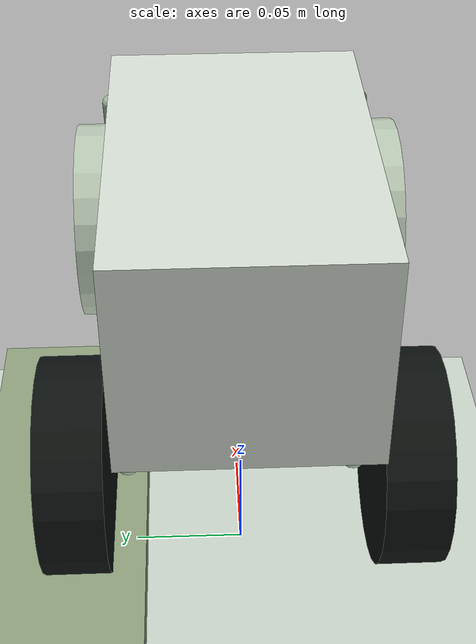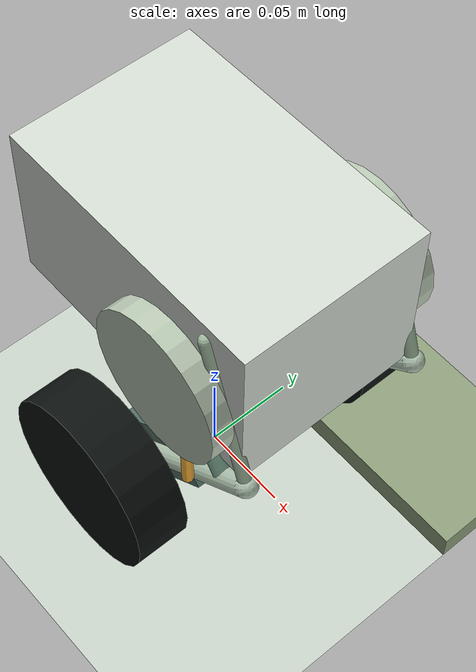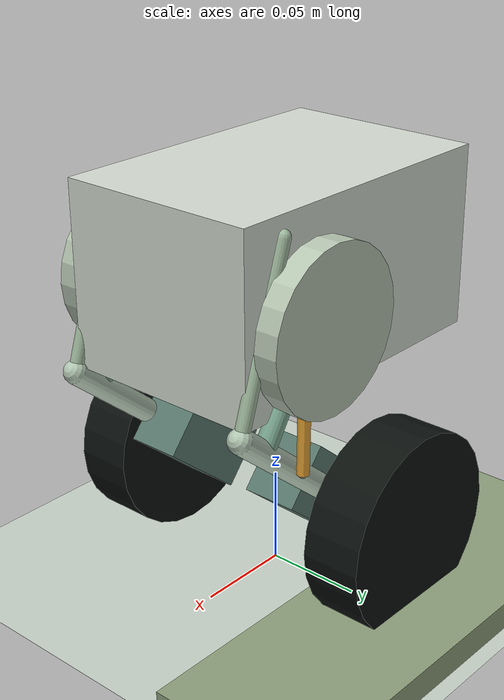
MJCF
<mujoco model="beni_independent_fourbar"><compiler angle="radian" autolimits="true" /><option timestep=".00025" integrator="implicitfast" iterations="100" gravity="0 0 -9.81" /><visual><global offwidth="1280" offheight="960" /></visual><default><geom friction="0.8 0.005 0.0001" solref=".003 1" solimp=".95 .99 .001" contype="2" conaffinity="1" /><joint damping=".002" frictionloss=".002" /></default><worldbody><geom name="ground" type="plane" size="4 4 .1" rgba=".78 .82 .78 1" contype="1" conaffinity="2" /><geom name="left_platform" type="box" pos="0.0 0.085 0.0075" size="0.4 0.04 0.0075" rgba=".55 .62 .48 1" contype="1" conaffinity="2" /><light pos="0 -1 2" dir="0 0 -1" /><body name="chassis" pos="0 0 .16"><freejoint name="root" /><inertial pos="-.006 0 .015" mass="1.646" diaginertia=".0031 .0045 .0058" /><geom name="body_shell" type="box" pos="0 0 .009" size=".080 .052 .046" rgba=".83 .86 .82 1" /><geom name="right_hip_cover" type="cylinder" pos="0.03625 -0.06 0.0" size=".0405 .006" quat=".70710678 .70710678 0 0" rgba=".72 .78 .7 1" /><geom name="left_hip_cover" type="cylinder" pos="0.03625 0.06 0.0" size=".0405 .006" quat=".70710678 .70710678 0 0" rgba=".72 .78 .7 1" /><site name="imu" pos="0 0 .04" size=".002" /><body name="left_upper" pos="0.03625 0.052 0.0" quat="0.8775825618903728 0.0 0.479425538604203 0.0"><joint name="left_hip" type="hinge" axis="0 1 0" ref="1.0" range=".63 1.27" armature="0.0026400000000000004" /><inertial pos="0.030209832319933305 0.0 0.0" mass=".04" diaginertia=".00001 .00002 .00002" /><geom name="left_upper_bar" type="capsule" fromto="0.0 0.0 0.0 0.06041966463986661 0.0 0.0" size=".005" rgba=".48 .65 .56 1" /><geom name="left_hip_hub" type="cylinder" size=".014 .006" quat=".70710678 .70710678 0 0" rgba=".93 .45 .15 1" /><site name="left_spring_upper" pos="0.026419664639866607 0.008 0.0" size=".002" /><body name="left_lower" pos="0.06041966463986661 0.0 0.0" quat="0.7508992278530376 0.0 0.6604167999148053 0.0"><joint name="left_knee" type="hinge" axis="0 1 0" ref="1.4427473863747462" range=".65 2.35" /><inertial pos="0.07199999999999988 -0.012 0.0" mass=".217" diaginertia=".00010 .00023 .00023" /><geom name="left_lower_bar" type="capsule" fromto="-0.018839218028653945 0.0 0.0 0.08999999999999984 0.0 0.0" size=".006" rgba=".7 .78 .7 1" /><geom name="left_motor_collision" type="box" pos="0.06599999999999984 -0.014 0.0" size=".027 .014 .016" rgba=".35 .47 .43 1" /><site name="left_spring_lower" pos="0.023 0.008 0.0" size=".002" /><site name="left_close_lower" pos="-0.018839218028653945 0.0 0.0" size=".002" /><body name="left_wheel" pos="0.08999999999999984 0.023 0.0" quat="0.34235538809835175 0.0 -0.9395705339355992 0.0"><joint name="left_wheel" type="hinge" axis="0 1 0" damping=".0003" frictionloss=".001" /><inertial pos="0 0 0" mass=".10" diaginertia=".00007 .000125 .00007" /><geom name="left_tire" type="cylinder" size=".05 .015" quat=".70710678 .70710678 0 0" condim="4" rgba=".045 .065 .055 1" /></body></body></body><body name="left_tie" pos="0.05584165620203589 0.052 0.044999999999992726" quat="0.809883688817786 0.0 0.5865904965023688 0.0"><joint name="left_tie" type="hinge" axis="0 1 0" ref="1.2536850444639063" /><inertial pos="0.04405743925290071 0.0 0.0" mass=".02" diaginertia=".000003 .000015 .000015" /><geom name="left_tie_bar" type="capsule" fromto="0.0 0.0 0.0 0.08811487850580142 0.0 0.0" size=".0035" rgba=".63 .73 .62 1" /><site name="left_close_tie" pos="0.08811487850580142 0.0 0.0" size=".002" /></body><body name="right_upper" pos="0.03625 -0.052 0.0" quat="0.8775825618903728 0.0 0.479425538604203 0.0"><joint name="right_hip" type="hinge" axis="0 1 0" ref="1.0" range=".63 1.27" armature="0.0026400000000000004" /><inertial pos="0.030209832319933305 0.0 0.0" mass=".04" diaginertia=".00001 .00002 .00002" /><geom name="right_upper_bar" type="capsule" fromto="0.0 0.0 0.0 0.06041966463986661 0.0 0.0" size=".005" rgba=".48 .65 .56 1" /><geom name="right_hip_hub" type="cylinder" size=".014 .006" quat=".70710678 .70710678 0 0" rgba=".93 .45 .15 1" /><site name="right_spring_upper" pos="0.026419664639866607 -0.008 0.0" size=".002" /><body name="right_lower" pos="0.06041966463986661 0.0 0.0" quat="0.7508992278530376 0.0 0.6604167999148053 0.0"><joint name="right_knee" type="hinge" axis="0 1 0" ref="1.4427473863747462" range=".65 2.35" /><inertial pos="0.07199999999999988 0.012 0.0" mass=".217" diaginertia=".00010 .00023 .00023" /><geom name="right_lower_bar" type="capsule" fromto="-0.018839218028653945 0.0 0.0 0.08999999999999984 0.0 0.0" size=".006" rgba=".7 .78 .7 1" /><geom name="right_motor_collision" type="box" pos="0.06599999999999984 0.014 0.0" size=".027 .014 .016" rgba=".35 .47 .43 1" /><site name="right_spring_lower" pos="0.023 -0.008 0.0" size=".002" /><site name="right_close_lower" pos="-0.018839218028653945 0.0 0.0" size=".002" /><body name="right_wheel" pos="0.08999999999999984 -0.023 0.0" quat="0.34235538809835175 0.0 -0.9395705339355992 0.0"><joint name="right_wheel" type="hinge" axis="0 1 0" damping=".0003" frictionloss=".001" /><inertial pos="0 0 0" mass=".10" diaginertia=".00007 .000125 .00007" /><geom name="right_tire" type="cylinder" size=".05 .015" quat=".70710678 .70710678 0 0" condim="4" rgba=".045 .065 .055 1" /></body></body></body><body name="right_tie" pos="0.05584165620203589 -0.052 0.044999999999992726" quat="0.809883688817786 0.0 0.5865904965023688 0.0"><joint name="right_tie" type="hinge" axis="0 1 0" ref="1.2536850444639063" /><inertial pos="0.04405743925290071 0.0 0.0" mass=".02" diaginertia=".000003 .000015 .000015" /><geom name="right_tie_bar" type="capsule" fromto="0.0 0.0 0.0 0.08811487850580142 0.0 0.0" size=".0035" rgba=".63 .73 .62 1" /><site name="right_close_tie" pos="0.08811487850580142 0.0 0.0" size=".002" /></body></body></worldbody><equality><connect name="left_closure" site1="left_close_lower" site2="left_close_tie" solref=".002 1" solimp=".999 .9999 .0001" /><connect name="right_closure" site1="right_close_lower" site2="right_close_tie" solref=".002 1" solimp=".999 .9999 .0001" /></equality><tendon><spatial name="left_spring" stiffness="3900" springlength=".05 1" damping="8" width=".003" rgba=".9 .64 .2 1"><site site="left_spring_upper" /><site site="left_spring_lower" /></spatial><spatial name="right_spring" stiffness="3900" springlength=".05 1" damping="8" width=".003" rgba=".9 .64 .2 1"><site site="right_spring_upper" /><site site="right_spring_lower" /></spatial></tendon><actuator><motor name="left_wheel_drive" joint="left_wheel" ctrlrange="-.45 .45" /><motor name="right_wheel_drive" joint="right_wheel" ctrlrange="-.45 .45" /><motor name="left_hip_drive" joint="left_hip" ctrlrange="-10 10" /><motor name="right_hip_drive" joint="right_hip" ctrlrange="-10 10" /></actuator><sensor><gyro name="gyro" site="imu" /><accelerometer name="accelerometer" site="imu" /></sensor></mujoco>
